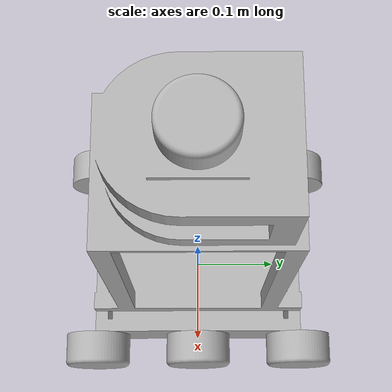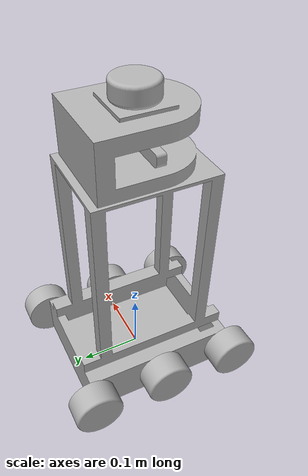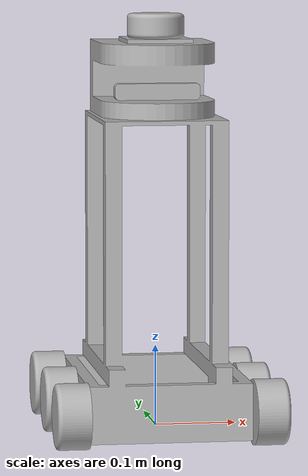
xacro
<?xml version="1.0" ?>
<robot name="nexusbot" xmlns:xacro="http://www.ros.org/wiki/xacro">

<xacro:include filename="$(find nexusbot_description)/urdf/materials.xacro" />
<xacro:include filename="$(find nexusbot_description)/urdf/nexusbot.trans" />
<xacro:include filename="$(find nexusbot_description)/urdf/nexusbot.gazebo" />
<xacro:include filename="$(find nexusbot_description)/gazebo/nexusbot_materials.gazebo" />
<xacro:include filename="$(find nexusbot_description)/gazebo/nexusbot_physics.gazebo" />
<xacro:include filename="$(find nexusbot_description)/gazebo/nexusbot_plugin.gazebo" />

<link name="base_link">
  <inertial>
    <origin xyz="3.6768873951834407e-10 0.0053825688307286255 0.20941756857427393" rpy="0 0 0"/>
    <mass value="27.053930631957453"/>
    <inertia ixx="1.101454" iyy="1.048028" izz="0.2368" ixy="-0.0" iyz="-0.032034" ixz="-0.0"/>
  </inertial>
  <visual>
    <origin xyz="0 0 0" rpy="0 0 0"/>
    <geometry>
      <mesh filename="package://nexusbot_description/meshes/base_link.stl" scale="0.001 0.001 0.001"/>
    </geometry>
    <material name="silver"/>
  </visual>
  <collision>
    <origin xyz="0 0 0" rpy="0 0 0"/>
    <geometry>
      <mesh filename="package://nexusbot_description/meshes/base_link.stl" scale="0.001 0.001 0.001"/>
    </geometry>
  </collision>
</link>

<link name="lidar_link_1">
  <inertial>
    <origin xyz="5.022872033704671e-18 5.022872033704671e-18 0.015000000000000013" rpy="0 0 0"/>
    <mass value="0.8883778743776359"/>
    <inertia ixx="0.000332" iyy="0.000332" izz="0.000534" ixy="0.0" iyz="0.0" ixz="0.0"/>
  </inertial>
  <visual>
    <origin xyz="-0.0 -0.0 -0.48" rpy="0 0 0"/>
    <geometry>
      <mesh filename="package://nexusbot_description/meshes/lidar_link_1.stl" scale="0.001 0.001 0.001"/>
    </geometry>
    <material name="silver"/>
  </visual>
  <collision>
    <origin xyz="-0.0 -0.0 -0.48" rpy="0 0 0"/>
    <geometry>
      <mesh filename="package://nexusbot_description/meshes/lidar_link_1.stl" scale="0.001 0.001 0.001"/>
    </geometry>
  </collision>
</link>

<link name="lw1_1">
  <inertial>
    <origin xyz="0.01987617902945761 0.0 0.0" rpy="0 0 0"/>
    <mass value="1.5680468801027019"/>
    <inertia ixx="0.001247" iyy="0.00083" izz="0.00083" ixy="-0.0" iyz="-0.0" ixz="0.0"/>
  </inertial>
  <visual>
    <origin xyz="-0.1 0.1275 -0.035" rpy="0 0 0"/>
    <geometry>
      <mesh filename="package://nexusbot_description/meshes/lw1_1.stl" scale="0.001 0.001 0.001"/>
    </geometry>
    <material name="silver"/>
  </visual>
  <collision>
    <origin xyz="-0.1 0.1275 -0.035" rpy="0 0 0"/>
    <geometry>
      <mesh filename="package://nexusbot_description/meshes/lw1_1.stl" scale="0.001 0.001 0.001"/>
    </geometry>
  </collision>
</link>

<link name="lw2_1">
  <inertial>
    <origin xyz="0.019876179029457625 0.0 6.938893903907228e-18" rpy="0 0 0"/>
    <mass value="1.5680468801027012"/>
    <inertia ixx="0.001247" iyy="0.00083" izz="0.00083" ixy="0.0" iyz="-0.0" ixz="0.0"/>
  </inertial>
  <visual>
    <origin xyz="-0.1 -0.0 -0.035" rpy="0 0 0"/>
    <geometry>
      <mesh filename="package://nexusbot_description/meshes/lw2_1.stl" scale="0.001 0.001 0.001"/>
    </geometry>
    <material name="silver"/>
  </visual>
  <collision>
    <origin xyz="-0.1 -0.0 -0.035" rpy="0 0 0"/>
    <geometry>
      <mesh filename="package://nexusbot_description/meshes/lw2_1.stl" scale="0.001 0.001 0.001"/>
    </geometry>
  </collision>
</link>

<link name="lw3_1">
  <inertial>
    <origin xyz="0.019876179029457583 -1.3877787807814457e-16 -5.551115123125783e-17" rpy="0 0 0"/>
    <mass value="1.5680468801027012"/>
    <inertia ixx="0.001247" iyy="0.00083" izz="0.00083" ixy="0.0" iyz="-0.0" ixz="-0.0"/>
  </inertial>
  <visual>
    <origin xyz="-0.1 -0.1275 -0.035" rpy="0 0 0"/>
    <geometry>
      <mesh filename="package://nexusbot_description/meshes/lw3_1.stl" scale="0.001 0.001 0.001"/>
    </geometry>
    <material name="silver"/>
  </visual>
  <collision>
    <origin xyz="-0.1 -0.1275 -0.035" rpy="0 0 0"/>
    <geometry>
      <mesh filename="package://nexusbot_description/meshes/lw3_1.stl" scale="0.001 0.001 0.001"/>
    </geometry>
  </collision>
</link>

<link name="rw1_1">
  <inertial>
    <origin xyz="-0.019876179029457555 0.0 0.0" rpy="0 0 0"/>
    <mass value="1.568046880102702"/>
    <inertia ixx="0.001247" iyy="0.00083" izz="0.00083" ixy="-0.0" iyz="-0.0" ixz="-0.0"/>
  </inertial>
  <visual>
    <origin xyz="0.1 0.1275 -0.035" rpy="0 0 0"/>
    <geometry>
      <mesh filename="package://nexusbot_description/meshes/rw1_1.stl" scale="0.001 0.001 0.001"/>
    </geometry>
    <material name="silver"/>
  </visual>
  <collision>
    <origin xyz="0.1 0.1275 -0.035" rpy="0 0 0"/>
    <geometry>
      <mesh filename="package://nexusbot_description/meshes/rw1_1.stl" scale="0.001 0.001 0.001"/>
    </geometry>
  </collision>
</link>

<link name="rw2_1">
  <inertial>
    <origin xyz="-0.019876179029457625 1.7763568394002505e-17 0.0" rpy="0 0 0"/>
    <mass value="1.5680468801027023"/>
    <inertia ixx="0.001247" iyy="0.00083" izz="0.00083" ixy="0.0" iyz="0.0" ixz="-0.0"/>
  </inertial>
  <visual>
    <origin xyz="0.1 -0.0 -0.035" rpy="0 0 0"/>
    <geometry>
      <mesh filename="package://nexusbot_description/meshes/rw2_1.stl" scale="0.001 0.001 0.001"/>
    </geometry>
    <material name="silver"/>
  </visual>
  <collision>
    <origin xyz="0.1 -0.0 -0.035" rpy="0 0 0"/>
    <geometry>
      <mesh filename="package://nexusbot_description/meshes/rw2_1.stl" scale="0.001 0.001 0.001"/>
    </geometry>
  </collision>
</link>

<link name="rw3_1">
  <inertial>
    <origin xyz="-0.01987617902945764 0.0 0.0" rpy="0 0 0"/>
    <mass value="1.5680468801027014"/>
    <inertia ixx="0.001247" iyy="0.00083" izz="0.00083" ixy="0.0" iyz="0.0" ixz="-0.0"/>
  </inertial>
  <visual>
    <origin xyz="0.1 -0.1275 -0.035" rpy="0 0 0"/>
    <geometry>
      <mesh filename="package://nexusbot_description/meshes/rw3_1.stl" scale="0.001 0.001 0.001"/>
    </geometry>
    <material name="silver"/>
  </visual>
  <collision>
    <origin xyz="0.1 -0.1275 -0.035" rpy="0 0 0"/>
    <geometry>
      <mesh filename="package://nexusbot_description/meshes/rw3_1.stl" scale="0.001 0.001 0.001"/>
    </geometry>
  </collision>
</link>

<link name="camera_link_1">
  <inertial>
    <origin xyz="1.1175870895385742e-09 1.4528632411719977e-09 0.009999999999999953" rpy="0 0 0"/>
    <mass value="0.2447480633740049"/>
    <inertia ixx="1.3e-05" iyy="0.000229" izz="0.000225" ixy="0.0" iyz="0.0" ixz="-0.0"/>
  </inertial>
  <visual>
    <origin xyz="-0.0 0.012 -0.405" rpy="0 0 0"/>
    <geometry>
      <mesh filename="package://nexusbot_description/meshes/camera_link_1.stl" scale="0.001 0.001 0.001"/>
    </geometry>
    <material name="silver"/>
  </visual>
  <collision>
    <origin xyz="-0.0 0.012 -0.405" rpy="0 0 0"/>
    <geometry>
      <mesh filename="package://nexusbot_description/meshes/camera_link_1.stl" scale="0.001 0.001 0.001"/>
    </geometry>
  </collision>
</link>

<joint name="lidar_joint" type="continuous">
  <origin xyz="0.0 0.0 0.48" rpy="0 0 0"/>
  <parent link="base_link"/>
  <child link="lidar_link_1"/>
  <axis xyz="0.0 0.0 1.0"/>
</joint>

<joint name="lw1_joint" type="continuous">
  <origin xyz="0.1 -0.1275 0.035" rpy="0 0 0"/>
  <parent link="base_link"/>
  <child link="lw1_1"/>
  <axis xyz="1.0 0.0 0.0"/>
</joint>

<joint name="lw2_joint" type="continuous">
  <origin xyz="0.1 0.0 0.035" rpy="0 0 0"/>
  <parent link="base_link"/>
  <child link="lw2_1"/>
  <axis xyz="1.0 0.0 0.0"/>
</joint>

<joint name="lw3_joint" type="continuous">
  <origin xyz="0.1 0.1275 0.035" rpy="0 0 0"/>
  <parent link="base_link"/>
  <child link="lw3_1"/>
  <axis xyz="1.0 0.0 0.0"/>
</joint>

<joint name="rw1_joint" type="continuous">
  <origin xyz="-0.1 -0.1275 0.035" rpy="0 0 0"/>
  <parent link="base_link"/>
  <child link="rw1_1"/>
  <axis xyz="1.0 -0.0 0.0"/>
</joint>

<joint name="rw2_joint" type="continuous">
  <origin xyz="-0.1 0.0 0.035" rpy="0 0 0"/>
  <parent link="base_link"/>
  <child link="rw2_1"/>
  <axis xyz="1.0 -0.0 0.0"/>
</joint>

<joint name="rw3_joint" type="continuous">
  <origin xyz="-0.1 0.1275 0.035" rpy="0 0 0"/>
  <parent link="base_link"/>
  <child link="rw3_1"/>
  <axis xyz="1.0 -0.0 0.0"/>
</joint>

<joint name="camera_fix" type="fixed">
  <origin xyz="0.0 -0.012 0.405" rpy="0 0 0"/>
  <parent link="base_link"/>
  <child link="camera_link_1"/>
</joint>

</robot>

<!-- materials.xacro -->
<robot name="nexusbot" xmlns:xacro="http://www.ros.org/wiki/xacro" >

<material name="silver">
  <color rgba="0.700 0.700 0.700 1.000"/>
</material>

</robot>

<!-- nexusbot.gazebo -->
<robot name="nexusbot" xmlns:xacro="http://www.ros.org/wiki/xacro" >

<xacro:property name="body_color" value="Gazebo/Silver" />

<gazebo>
  <plugin name="control" filename="libgazebo_ros_control.so"/>
</gazebo>
<gazebo reference="base_link">
  <material>${body_color}</material>
  <mu1>0.2</mu1>
  <mu2>0.2</mu2>
  <selfCollide>true</selfCollide>
  <gravity>true</gravity>
</gazebo>

<gazebo reference="lidar_link_1">
  <material>${body_color}</material>
  <mu1>0.2</mu1>
  <mu2>0.2</mu2>
  <selfCollide>true</selfCollide>
</gazebo>

<gazebo reference="lw1_1">
  <material>${body_color}</material>
  <mu1>0.2</mu1>
  <mu2>0.2</mu2>
  <selfCollide>true</selfCollide>
</gazebo>

<gazebo reference="lw2_1">
  <material>${body_color}</material>
  <mu1>0.2</mu1>
  <mu2>0.2</mu2>
  <selfCollide>true</selfCollide>
</gazebo>

<gazebo reference="lw3_1">
  <material>${body_color}</material>
  <mu1>0.2</mu1>
  <mu2>0.2</mu2>
  <selfCollide>true</selfCollide>
</gazebo>

<gazebo reference="rw1_1">
  <material>${body_color}</material>
  <mu1>0.2</mu1>
  <mu2>0.2</mu2>
  <selfCollide>true</selfCollide>
</gazebo>

<gazebo reference="rw2_1">
  <material>${body_color}</material>
  <mu1>0.2</mu1>
  <mu2>0.2</mu2>
  <selfCollide>true</selfCollide>
</gazebo>

<gazebo reference="rw3_1">
  <material>${body_color}</material>
  <mu1>0.2</mu1>
  <mu2>0.2</mu2>
  <selfCollide>true</selfCollide>
</gazebo>

<gazebo reference="camera_link_1">
  <material>${body_color}</material>
  <mu1>0.2</mu1>
  <mu2>0.2</mu2>
  <selfCollide>true</selfCollide>
</gazebo>

</robot>

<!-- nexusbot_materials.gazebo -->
<robot name="nexusbot" xmlns:xacro="http://www.ros.org/wiki/xacro" >

<xacro:property name="body_color" value="Gazebo/White" />
<xacro:property name="wheels_color" value="Gazebo/Black" />
<xacro:property name="lidar_color" value="Gazebo/Black" />
<xacro:property name="camera_color" value="Gazebo/Blue" />

<gazebo reference="base_link">
  <material>${body_color}</material>
</gazebo>

<gazebo reference="lw1_1">
  <material>${wheels_color}</material>
</gazebo>
<gazebo reference="lw2_1">
  <material>${wheels_color}</material>
</gazebo>
<gazebo reference="lw3_1">
  <material>${wheels_color}</material>
</gazebo>

<gazebo reference="rw1_1">
  <material>${wheels_color}</material>
</gazebo>
<gazebo reference="rw2_1">
  <material>${wheels_color}</material>
</gazebo>
<gazebo reference="rw3_1">
  <material>${wheels_color}</material>
</gazebo>

<gazebo reference="lidar_link_1">
  <material>${lidar_color}</material>
</gazebo>

<gazebo reference="camera_link_1">
  <material>${camera_color}</material>
</gazebo>

</robot>
